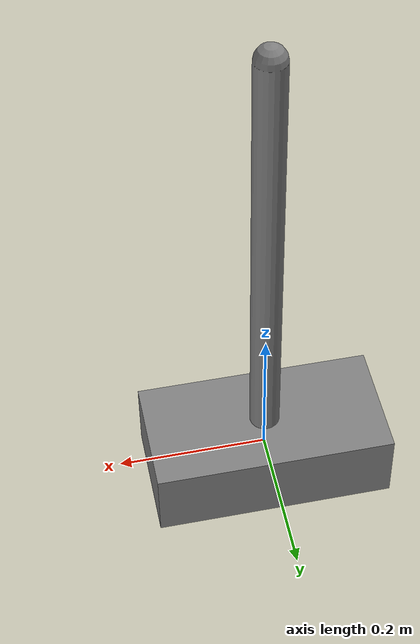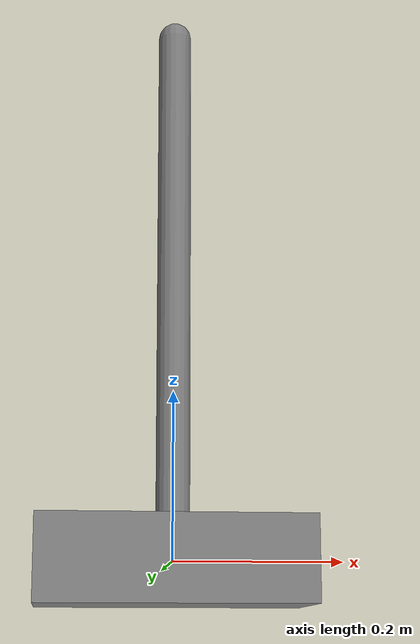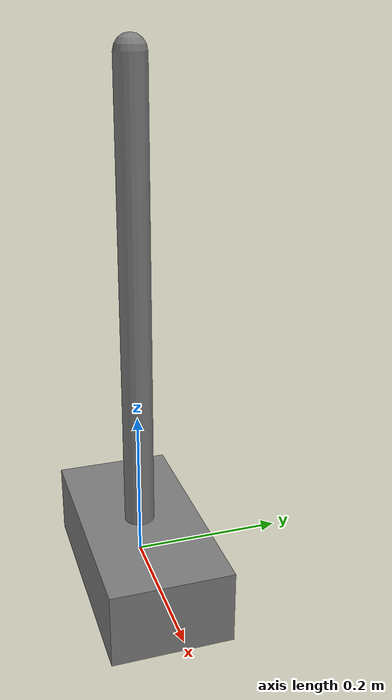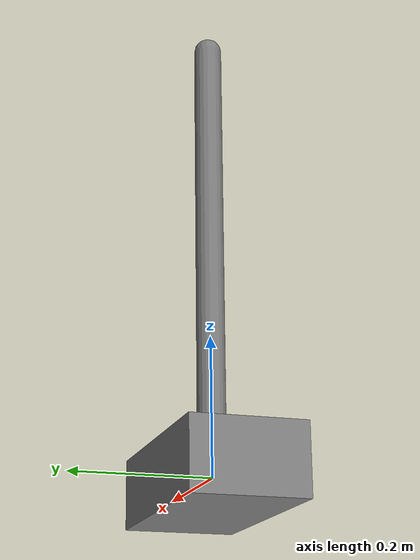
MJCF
<mujoco model="physlab_cartpole">
  <compiler angle="radian"/>
  <option timestep="0.02" integrator="RK4"/>
  <default>
    <joint damping="0.001" armature="0.0"/>
    <geom friction="0.8 0.1 0.1"/>
  </default>
  <worldbody>
    <body name="cart" pos="0 0 0">
      <joint name="slider" type="slide" axis="1 0 0" limited="true" range="-2.4 2.4"/>
      <geom name="cart_box" type="box" size="0.16 0.08 0.05" mass="1.0"/>
      <body name="pole" pos="0 0 0.05">
        <joint name="hinge" type="hinge" axis="0 1 0" damping="0.001"/>
        <geom name="pole_capsule" type="capsule" fromto="0 0 0 0 0 0.6" size="0.02" mass="0.1"/>
      </body>
    </body>
  </worldbody>
  <actuator>
    <motor name="cart_motor" joint="slider" gear="10" ctrllimited="true" ctrlrange="-1 1"/>
  </actuator>
</mujoco>
